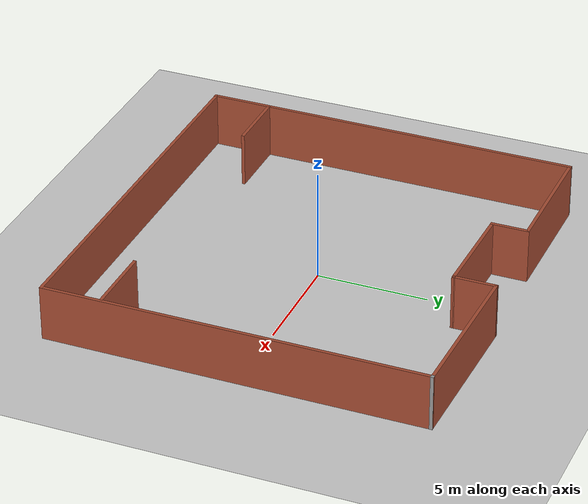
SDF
<sdf version="1.6">
 <world name="default">
  <light name="sun" type="directional">
   <pose>0 0 10 0 -0 0</pose>
   <diffuse>0.8 0.8 0.8 1</diffuse>
   <specular>0.2 0.2 0.2 1</specular>
   <attenuation>
    <range>1000</range>
    <constant>0.9</constant>
    <linear>0.01</linear>
    <quadratic>0.001</quadratic>
   </attenuation>
   <direction>-0.5 0.1 -0.9</direction>
  </light>
  <model name="ground_plane">
   <static>1</static>
   <link name="link">
    <collision name="collision">
     <geometry><plane><normal>0 0 1</normal><size>100 100</size></plane></geometry>
     <surface>
      <contact><collide_bitmask>65535</collide_bitmask></contact>
      <friction><ode><mu>100</mu><mu2>50</mu2></ode></friction>
     </surface>
    </collision>
    <visual name="visual">
     <cast_shadows>0</cast_shadows>
     <geometry><plane><normal>0 0 1</normal><size>100 100</size></plane></geometry>
     <material>
      <script><uri>file://media/materials/scripts/gazebo.material</uri><name>Gazebo/Grey</name></script>
     </material>
    </visual>
   </link>
  </model>
  <gravity>0 0 -9.8</gravity>
  <magnetic_field>6e-06 2.3e-05 -4.2e-05</magnetic_field>
  <atmosphere type="adiabatic"/>
  <physics name="default_physics" default="0" type="ode">
   <max_step_size>0.001</max_step_size>
   <real_time_factor>1</real_time_factor>
   <real_time_update_rate>1000</real_time_update_rate>
  </physics>
  <scene><ambient>0.4 0.4 0.4 1</ambient><background>0.7 0.7 0.7 1</background><shadows>1</shadows></scene>
  <audio><device>default</device></audio>
  <spherical_coordinates>
   <surface_model>EARTH_WGS84</surface_model>
   <latitude_deg>0</latitude_deg>
   <longitude_deg>0</longitude_deg>
   <elevation>0</elevation>
   <heading_deg>0</heading_deg>
  </spherical_coordinates>
  <model name="map_108">
   <pose>-0.115949 -0.086008 0 0 -0 0</pose>
   <link name="Wall_10">
    <collision name="Wall_10_Collision">
     <geometry><box><size>4.75 0.15 2.5</size></box></geometry>
     <pose>0 0 1.25 0 -0 0</pose>
    </collision>
    <visual name="Wall_10_Visual">
     <pose>0 0 1.25 0 -0 0</pose>
     <geometry><box><size>4.75 0.15 2.5</size></box></geometry>
     <material>
      <script><uri>file://media/materials/scripts/gazebo.material</uri><name>Gazebo/Bricks</name></script>
      <ambient>1 1 1 1</ambient>
     </material>
     <meta><layer>0</layer></meta>
    </visual>
    <pose>-0.608272 6.82439 0 0 -0 -0.020225</pose>
   </link>
   <link name="Wall_13">
    <collision name="Wall_13_Collision">
     <geometry><box><size>2 0.15 2.5</size></box></geometry>
     <pose>0 0 1.25 0 -0 0</pose>
    </collision>
    <visual name="Wall_13_Visual">
     <pose>0 0 1.25 0 -0 0</pose>
     <geometry><box><size>2 0.15 2.5</size></box></geometry>
     <material>
      <script><uri>file://media/materials/scripts/gazebo.material</uri><name>Gazebo/Bricks</name></script>
      <ambient>1 1 1 1</ambient>
     </material>
     <meta><layer>0</layer></meta>
    </visual>
    <pose>1.69173 7.70287 0 0 -0 1.5708</pose>
   </link>
   <link name="Wall_14">
    <collision name="Wall_14_Collision">
     <geometry><box><size>7.30172 0.15 2.5</size></box></geometry>
     <pose>0 0 1.25 0 -0 0</pose>
    </collision>
    <visual name="Wall_14_Visual">
     <pose>0 0 1.25 0 -0 0</pose>
     <geometry><box><size>7.30172 0.15 2.5</size></box></geometry>
     <material>
      <script><uri>file://media/materials/scripts/gazebo.material</uri><name>Gazebo/Bricks</name></script>
      <ambient>1 1 1 1</ambient>
     </material>
     <meta><layer>0</layer></meta>
    </visual>
    <pose>5.26673 8.54939 0 0 -0 -0.021948</pose>
   </link>
   <link name="Wall_15">
    <collision name="Wall_15_Collision">
     <geometry><box><size>0.16 0.15 2.5</size></box></geometry>
     <pose>0 0 1.25 0 -0 0</pose>
    </collision>
    <visual name="Wall_15_Visual">
     <pose>0 0 1.25 0 -0 0</pose>
     <geometry><box><size>0.16 0.15 2.5</size></box></geometry>
     <material>
      <script><uri>file://media/materials/scripts/gazebo.material</uri><name>Gazebo/Grey</name></script>
      <ambient>0 0 0 1</ambient>
     </material>
     <meta><layer>0</layer></meta>
    </visual>
    <pose>8.84673 8.47091 0 0 -0 0</pose>
   </link>
   <link name="Wall_16">
    <collision name="Wall_16_Collision">
     <geometry><box><size>3 0.15 2.5</size></box></geometry>
     <pose>0 0 1.25 0 -0 0</pose>
    </collision>
    <visual name="Wall_16_Visual">
     <pose>0 0 1.25 0 -0 0</pose>
     <geometry><box><size>3 0.15 2.5</size></box></geometry>
     <material>
      <script><uri>file://media/materials/scripts/gazebo.material</uri><name>Gazebo/Bricks</name></script>
      <ambient>1 1 1 1</ambient>
     </material>
     <meta><layer>0</layer></meta>
    </visual>
    <pose>-7.33327 -5.99135 0 0 -0 0</pose>
   </link>
   <link name="Wall_18">
    <collision name="Wall_18_Collision">
     <geometry><box><size>3.25 0.15 2.5</size></box></geometry>
     <pose>0 0 1.25 0 -0 0</pose>
    </collision>
    <visual name="Wall_18_Visual">
     <pose>0 0 1.25 0 -0 0</pose>
     <geometry><box><size>3.25 0.15 2.5</size></box></geometry>
     <material>
      <script><uri>file://media/materials/scripts/gazebo.material</uri><name>Gazebo/Bricks</name></script>
      <ambient>1 1 1 1</ambient>
     </material>
     <meta><layer>0</layer></meta>
    </visual>
    <pose>7.16762 -5.94483 0 0 -0 0</pose>
   </link>
   <link name="Wall_2">
    <collision name="Wall_2_Collision">
     <geometry><box><size>17.8431 0.15 2.5</size></box></geometry>
     <pose>0 0 1.25 0 -0 0</pose>
    </collision>
    <visual name="Wall_2_Visual">
     <pose>0 0 1.25 0 -0 0</pose>
     <geometry><box><size>17.8431 0.15 2.5</size></box></geometry>
     <material>
      <script><uri>file://media/materials/scripts/gazebo.material</uri><name>Gazebo/Bricks</name></script>
      <ambient>1 1 1 1</ambient>
     </material>
     <meta><layer>0</layer></meta>
    </visual>
    <pose>-0.004796 -8.62909 0 0 -0 0</pose>
   </link>
   <link name="Wall_3">
    <collision name="Wall_3_Collision">
     <geometry><box><size>17.25 0.15 2.5</size></box></geometry>
     <pose>0 0 1.25 0 -0 0</pose>
    </collision>
    <visual name="Wall_3_Visual">
     <pose>0 0 1.25 0 -0 0</pose>
     <geometry><box><size>17.25 0.15 2.5</size></box></geometry>
     <material>
      <script><uri>file://media/materials/scripts/gazebo.material</uri><name>Gazebo/Bricks</name></script>
      <ambient>1 1 1 1</ambient>
     </material>
     <meta><layer>0</layer></meta>
    </visual>
    <pose>8.84173 -0.079087 0 0 -0 1.5708</pose>
   </link>
   <link name="Wall_6">
    <collision name="Wall_6_Collision">
     <geometry><box><size>17.2503 0.15 2.5</size></box></geometry>
     <pose>0 0 1.25 0 -0 0</pose>
    </collision>
    <visual name="Wall_6_Visual">
     <pose>0 0 1.25 0 -0 0</pose>
     <geometry><box><size>17.2503 0.15 2.5</size></box></geometry>
     <material>
      <script><uri>file://media/materials/scripts/gazebo.material</uri><name>Gazebo/Bricks</name></script>
      <ambient>1 1 1 1</ambient>
     </material>
     <meta><layer>0</layer></meta>
    </visual>
    <pose>-8.8048 -0.079087 0 0 -0 -1.57624</pose>
   </link>
   <link name="Wall_8">
    <collision name="Wall_8_Collision">
     <geometry><box><size>6 0.15 2.5</size></box></geometry>
     <pose>0 0 1.25 0 -0 0</pose>
    </collision>
    <visual name="Wall_8_Visual">
     <pose>0 0 1.25 0 -0 0</pose>
     <geometry><box><size>6 0.15 2.5</size></box></geometry>
     <material>
      <script><uri>file://media/materials/scripts/gazebo.material</uri><name>Gazebo/Bricks</name></script>
      <ambient>1 1 1 1</ambient>
     </material>
     <meta><layer>0</layer></meta>
    </visual>
    <pose>-5.83327 8.47091 0 0 -0 0</pose>
   </link>
   <link name="Wall_9">
    <collision name="Wall_9_Collision">
     <geometry><box><size>1.75 0.15 2.5</size></box></geometry>
     <pose>0 0 1.25 0 -0 0</pose>
    </collision>
    <visual name="Wall_9_Visual">
     <pose>0 0 1.25 0 -0 0</pose>
     <geometry><box><size>1.75 0.15 2.5</size></box></geometry>
     <material>
      <script><uri>file://media/materials/scripts/gazebo.material</uri><name>Gazebo/Bricks</name></script>
      <ambient>1 1 1 1</ambient>
     </material>
     <meta><layer>0</layer></meta>
    </visual>
    <pose>-2.90827 7.67091 0 0 -0 -1.5708</pose>
   </link>
   <static>1</static>
  </model>
 </world>
</sdf>
